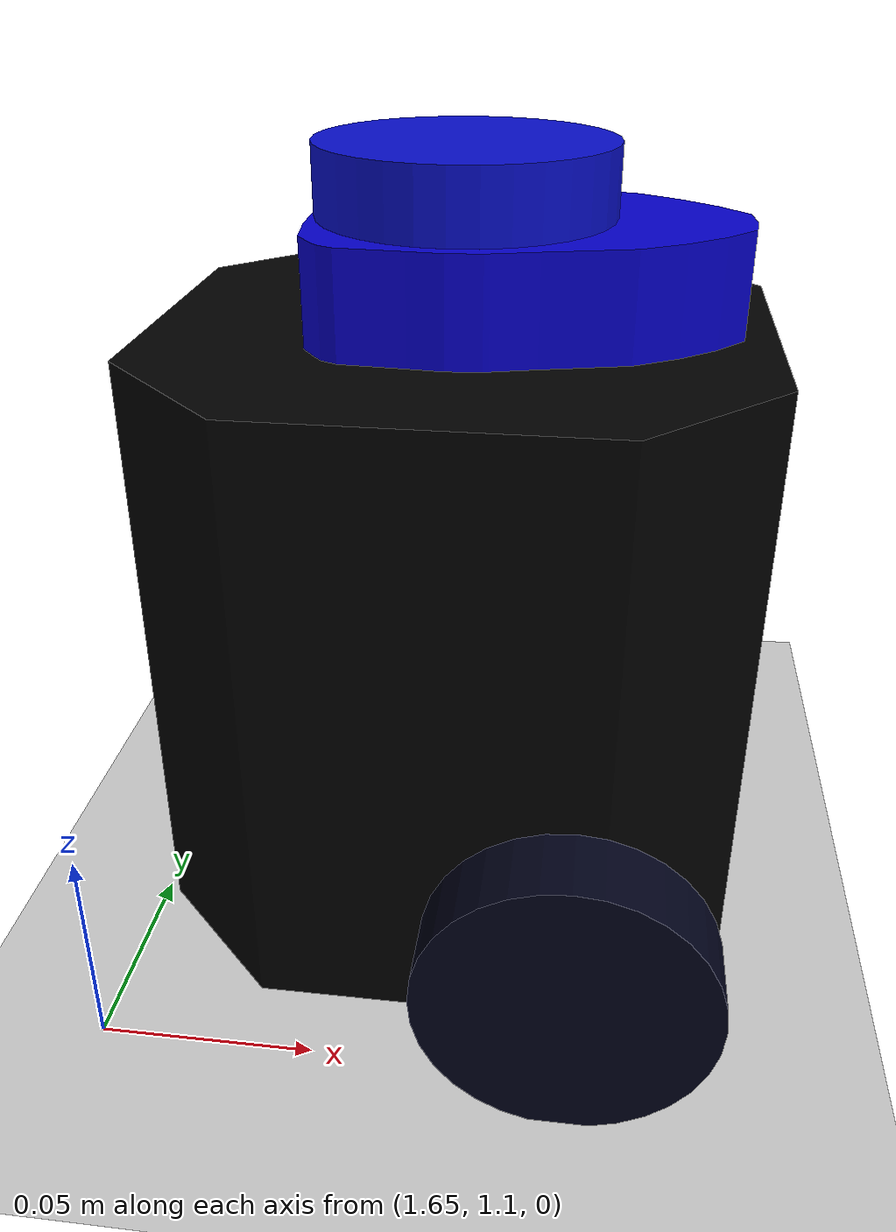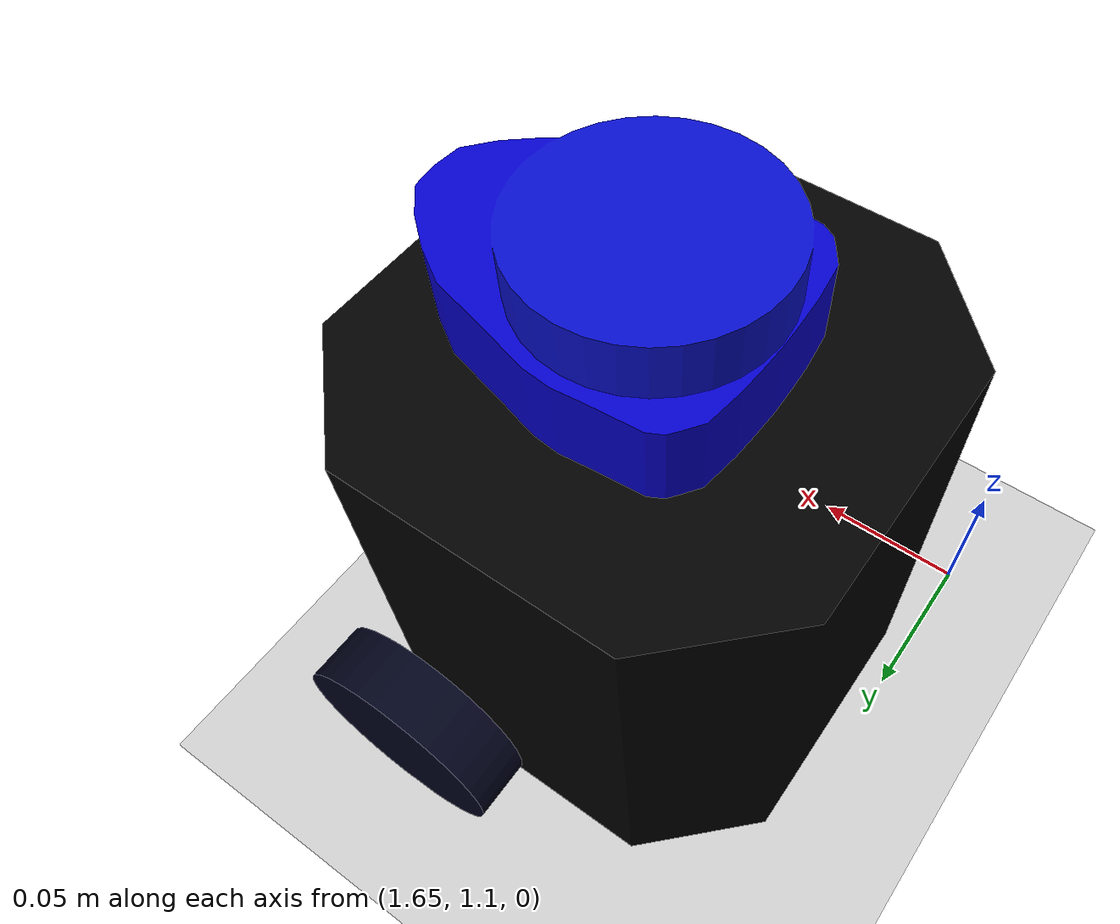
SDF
<sdf version="1.7">
 <world name="default">
  <model name="ground_plane">
   <static>1</static>
   <link name="link">
    <collision name="collision">
     <geometry><plane><normal>0 0 1</normal><size>100 100</size></plane></geometry>
     <surface><friction><ode><mu>100</mu><mu2>50</mu2></ode></friction></surface>
    </collision>
    <visual name="visual">
     <cast_shadows>0</cast_shadows>
     <geometry><plane><normal>0 0 1</normal><size>100 100</size></plane></geometry>
     <material>
      <script><uri>file://media/materials/scripts/gazebo.material</uri><name>Gazebo/Grey</name></script>
     </material>
    </visual>
   </link>
  </model>
  <model name="tb4">
   <pose>1.75734 1.17726 0.00888 2e-05 0.001442 -0.000315</pose>
   <link name="base_footprint">
    <inertial>
     <inertia><ixx>1</ixx><ixy>0</ixy><ixz>0</ixz><iyy>1</iyy><iyz>0</iyz><izz>1</izz></inertia>
     <mass>1</mass>
    </inertial>
   </link>
   <link name="base_link">
    <inertial>
     <pose>-0.032 0 0.07 0 -0 0</pose>
     <inertia>
      <ixx>0.723974</ixx>
      <ixy>4.6864e-10</ixy>
      <ixz>-1.09526e-08</ixz>
      <iyy>0.723974</iyy>
      <iyz>2.85826e-09</iyz>
      <izz>0.65305</izz>
     </inertia>
     <mass>0.825735</mass>
    </inertial>
    <collision name="base_collision">
     <pose>-0.032 0 0.07 0 -0 0</pose>
     <geometry><box><size>0.14 0.14 0.14</size></box></geometry>
    </collision>
    <visual name="base_visual">
     <pose>-0.032 0 0 0 -0 0</pose>
     <geometry>
      <mesh><uri>model://turtlebot3_burger/meshes/burger_base.dae</uri><scale>0.001 0.001 0.001</scale></mesh>
     </geometry>
    </visual>
   </link>
   <link name="imu_link">
    <sensor name="tb3_imu" type="imu">
     <always_on>1</always_on>
     <update_rate>30</update_rate>
     <imu>
      <angular_velocity>
       <x><noise type="gaussian"><mean>0</mean><stddev>0.0002</stddev></noise></x>
       <y><noise type="gaussian"><mean>0</mean><stddev>0.0002</stddev></noise></y>
       <z><noise type="gaussian"><mean>0</mean><stddev>0.0002</stddev></noise></z>
      </angular_velocity>
      <linear_acceleration>
       <x><noise type="gaussian"><mean>0</mean><stddev>0.017</stddev></noise></x>
       <y><noise type="gaussian"><mean>0</mean><stddev>0.017</stddev></noise></y>
       <z><noise type="gaussian"><mean>0</mean><stddev>0.017</stddev></noise></z>
      </linear_acceleration>
     </imu>
     <plugin name="turtlebot3_imu" filename="libgazebo_ros_imu_sensor.so">
      <ros><remapping>~/out:=imu</remapping><namespace>/tb4</namespace></ros>
     </plugin>
    </sensor>
    <inertial>
     <inertia><ixx>1</ixx><ixy>0</ixy><ixz>0</ixz><iyy>1</iyy><iyz>0</iyz><izz>1</izz></inertia>
     <mass>1</mass>
    </inertial>
   </link>
   <link name="base_scan">
    <inertial>
     <pose>-0.02 0 0.161 0 -0 0</pose>
     <inertia><ixx>0.001</ixx><ixy>0</ixy><ixz>0</ixz><iyy>0.001</iyy><iyz>0</iyz><izz>0.001</izz></inertia>
     <mass>0.114</mass>
    </inertial>
    <collision name="lidar_sensor_collision">
     <pose>-0.02 0 0.161 0 -0 0</pose>
     <geometry><cylinder><radius>0.0508</radius><length>0.055</length></cylinder></geometry>
    </collision>
    <visual name="lidar_sensor_visual">
     <pose>-0.032 0 0.171 0 -0 0</pose>
     <geometry>
      <mesh><uri>model://turtlebot3_burger/meshes/lds.dae</uri><scale>0.001 0.001 0.001</scale></mesh>
     </geometry>
    </visual>
    <sensor name="hls_lfcd_lds" type="ray">
     <always_on>1</always_on>
     <visualize>1</visualize>
     <pose>-0.032 0 0.171 0 -0 0</pose>
     <update_rate>5</update_rate>
     <ray>
      <scan>
       <horizontal>
        <samples>360</samples>
        <resolution>1</resolution>
        <min_angle>0</min_angle>
        <max_angle>6.28</max_angle>
       </horizontal>
       <vertical><samples>1</samples><min_angle>0</min_angle><max_angle>0</max_angle></vertical>
      </scan>
      <range><min>0.12</min><max>1</max><resolution>0.015</resolution></range>
      <noise><type>gaussian</type><mean>0</mean><stddev>0.01</stddev></noise>
     </ray>
     <plugin name="turtlebot3_laserscan" filename="libgazebo_ros_ray_sensor.so">
      <ros><remapping>~/out:=scan</remapping><visualize>1</visualize><namespace>/tb4</namespace></ros>
      <output_type>sensor_msgs/LaserScan</output_type>
      <frame_name>base_scan</frame_name>
     </plugin>
    </sensor>
   </link>
   <link name="wheel_left_link">
    <inertial>
     <pose>0 0.08 0.023 -1.57 0 0</pose>
     <inertia>
      <ixx>0.00181582</ixx>
      <ixy>-9.3392e-12</ixy>
      <ixz>1.04909e-11</ixz>
      <iyy>0.00329221</iyy>
      <iyz>5.75694e-11</iyz>
      <izz>0.00181582</izz>
     </inertia>
     <mass>0.0284989</mass>
    </inertial>
    <collision name="wheel_left_collision">
     <pose>0 0.08 0.023 -1.57 0 0</pose>
     <geometry><cylinder><radius>0.033</radius><length>0.018</length></cylinder></geometry>
     <surface>
      <friction>
       <ode><mu>100000</mu><mu2>100000</mu2><fdir1>0 0 0</fdir1><slip1>0</slip1><slip2>0</slip2></ode>
      </friction>
      <contact>
       <ode>
        <soft_cfm>0</soft_cfm>
        <soft_erp>0.2</soft_erp>
        <kp>100000</kp>
        <kd>1</kd>
        <max_vel>0.01</max_vel>
        <min_depth>0.001</min_depth>
       </ode>
      </contact>
     </surface>
    </collision>
    <visual name="wheel_left_visual">
     <pose>0 0.08 0.023 0 -0 0</pose>
     <geometry>
      <mesh><uri>model://turtlebot3_burger/meshes/tire.dae</uri><scale>0.001 0.001 0.001</scale></mesh>
     </geometry>
    </visual>
   </link>
   <link name="wheel_right_link">
    <inertial>
     <pose>0 -0.08 0.023 -1.57 0 0</pose>
     <inertia>
      <ixx>0.00181582</ixx>
      <ixy>-9.3392e-12</ixy>
      <ixz>1.04909e-11</ixz>
      <iyy>0.00329221</iyy>
      <iyz>5.75694e-11</iyz>
      <izz>0.00181582</izz>
     </inertia>
     <mass>0.0284989</mass>
    </inertial>
    <collision name="wheel_right_collision">
     <pose>0 -0.08 0.023 -1.57 0 0</pose>
     <geometry><cylinder><radius>0.033</radius><length>0.018</length></cylinder></geometry>
     <surface>
      <friction>
       <ode><mu>100000</mu><mu2>100000</mu2><fdir1>0 0 0</fdir1><slip1>0</slip1><slip2>0</slip2></ode>
      </friction>
      <contact>
       <ode>
        <soft_cfm>0</soft_cfm>
        <soft_erp>0.2</soft_erp>
        <kp>100000</kp>
        <kd>1</kd>
        <max_vel>0.01</max_vel>
        <min_depth>0.001</min_depth>
       </ode>
      </contact>
     </surface>
    </collision>
    <visual name="wheel_right_visual">
     <pose>0 -0.08 0.023 0 -0 0</pose>
     <geometry>
      <mesh><uri>model://turtlebot3_burger/meshes/tire.dae</uri><scale>0.001 0.001 0.001</scale></mesh>
     </geometry>
    </visual>
   </link>
   <link name="caster_back_link">
    <pose>-0.081 0 -0.004 -1.57 0 0</pose>
    <inertial>
     <mass>0.005</mass>
     <inertia><ixx>0.001</ixx><ixy>0</ixy><ixz>0</ixz><iyy>0.001</iyy><iyz>0</iyz><izz>0.001</izz></inertia>
    </inertial>
    <collision name="collision">
     <geometry><sphere><radius>0.005</radius></sphere></geometry>
     <surface>
      <contact>
       <ode>
        <soft_cfm>0</soft_cfm>
        <soft_erp>0.2</soft_erp>
        <kp>100000</kp>
        <kd>1</kd>
        <max_vel>0.01</max_vel>
        <min_depth>0.001</min_depth>
       </ode>
      </contact>
     </surface>
    </collision>
   </link>
   <joint name="base_joint" type="fixed">
    <parent>base_footprint</parent>
    <child>base_link</child>
    <pose>0 0 0.01 0 -0 0</pose>
   </joint>
   <joint name="wheel_left_joint" type="revolute">
    <parent>base_link</parent>
    <child>wheel_left_link</child>
    <pose>0 0.08 0.023 -1.57 0 0</pose>
    <axis>
     <xyz>0 0 1</xyz>
     <limit><lower>-1e+16</lower><upper>1e+16</upper></limit>
     <dynamics><spring_reference>0</spring_reference><spring_stiffness>0</spring_stiffness></dynamics>
    </axis>
   </joint>
   <joint name="wheel_right_joint" type="revolute">
    <parent>base_link</parent>
    <child>wheel_right_link</child>
    <pose>0 -0.08 0.023 -1.57 0 0</pose>
    <axis>
     <xyz>0 0 1</xyz>
     <limit><lower>-1e+16</lower><upper>1e+16</upper></limit>
     <dynamics><spring_reference>0</spring_reference><spring_stiffness>0</spring_stiffness></dynamics>
    </axis>
   </joint>
   <joint name="caster_back_joint" type="ball"><parent>base_link</parent><child>caster_back_link</child></joint>
   <joint name="imu_joint" type="fixed">
    <parent>base_link</parent>
    <child>imu_link</child>
    <pose>-0.032 0 0.068 0 -0 0</pose>
    <axis><xyz>0 0 1</xyz><limit><lower>-1e+16</lower><upper>1e+16</upper></limit></axis>
   </joint>
   <joint name="lidar_joint" type="fixed">
    <parent>base_link</parent>
    <child>base_scan</child>
    <pose>-0.032 0 0.171 0 -0 0</pose>
    <axis><xyz>0 0 1</xyz><limit><lower>-1e+16</lower><upper>1e+16</upper></limit></axis>
   </joint>
   <plugin name="turtlebot3_diff_drive" filename="libgazebo_ros_diff_drive.so">
    <ros><remapping>/tf:=tf</remapping><namespace>/tb4</namespace></ros>
    <update_rate>10</update_rate>
    <left_joint>wheel_left_joint</left_joint>
    <right_joint>wheel_right_joint</right_joint>
    <wheel_separation>0.160</wheel_separation>
    <wheel_diameter>0.066</wheel_diameter>
    <max_wheel_torque>20</max_wheel_torque>
    <max_wheel_acceleration>1.0</max_wheel_acceleration>
    <command_topic>cmd_vel</command_topic>
    <publish_odom>1</publish_odom>
    <publish_odom_tf>1</publish_odom_tf>
    <publish_wheel_tf>0</publish_wheel_tf>
    <odometry_topic>odom</odometry_topic>
    <odometry_frame>odom</odometry_frame>
    <robot_base_frame>base_footprint</robot_base_frame>
   </plugin>
   <plugin name="turtlebot3_joint_state" filename="libgazebo_ros_joint_state_publisher.so">
    <ros><remapping>~/out:=joint_states</remapping><namespace>/tb4</namespace></ros>
    <update_rate>30</update_rate>
    <joint_name>wheel_left_joint</joint_name>
    <joint_name>wheel_right_joint</joint_name>
   </plugin>
  </model>
 </world>
</sdf>
